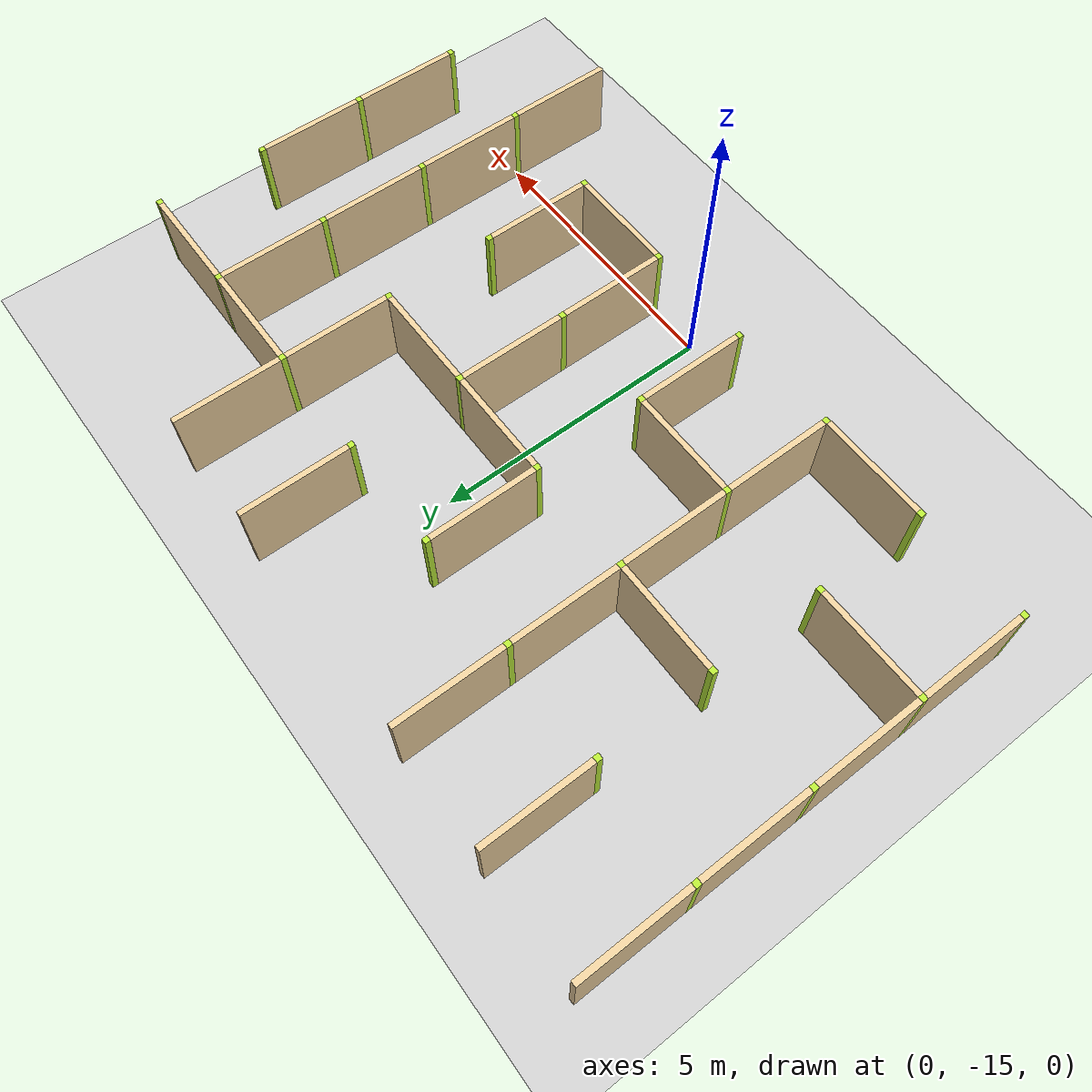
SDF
<sdf version="1.4">
 <world name="maze_world">
  <model name="ground">
   <static>true</static>
   <link name="ground_link">
    <collision name="collision1"><geometry><plane><normal>0 0 1</normal></plane></geometry></collision>
    <visual name="visual1"><geometry><plane><normal>0 0 1</normal><size>100 100</size></plane></geometry></visual>
   </link>
  </model>
  <model name="Untitled">
   <link name="Wall_0_7_v">
    <collision name="Wall_0_Collision">
     <geometry><box><size>1.9 0.1 1.5</size></box></geometry>
     <pose>0 0 0.75 0 -0 0</pose>
    </collision>
    <visual name="Wall_0_Visual">
     <pose>0 0 0.75 0 -0 0</pose>
     <geometry><box><size>1.9 0.1 1.5</size></box></geometry>
     <material>
      <script><uri>file://media/materials/scripts/gazebo.material</uri><name>Gazebo/Grey</name></script>
      <ambient>0.921569 0.807843 0.615686 1</ambient>
     </material>
     <meta><layer>0</layer></meta>
    </visual>
    <pose>-7 -8.0 0 0 -0 1.5708</pose>
    <sensor name="my_contact" type="contact">
     <contact><collision>box_collision</collision><topic>/rover_collision</topic></contact>
    </sensor>
   </link>
   <link name="Wall_1_7_v">
    <collision name="Wall_0_Collision">
     <geometry><box><size>1.9 0.1 1.5</size></box></geometry>
     <pose>0 0 0.75 0 -0 0</pose>
    </collision>
    <visual name="Wall_0_Visual">
     <pose>0 0 0.75 0 -0 0</pose>
     <geometry><box><size>1.9 0.1 1.5</size></box></geometry>
     <material>
      <script><uri>file://media/materials/scripts/gazebo.material</uri><name>Gazebo/Grey</name></script>
      <ambient>0.921569 0.807843 0.615686 1</ambient>
     </material>
     <meta><layer>0</layer></meta>
    </visual>
    <pose>-5 -8.0 0 0 -0 1.5708</pose>
    <sensor name="my_contact" type="contact">
     <contact><collision>box_collision</collision><topic>/rover_collision</topic></contact>
    </sensor>
   </link>
   <link name="Wall_2_7_v">
    <collision name="Wall_0_Collision">
     <geometry><box><size>1.9 0.1 1.5</size></box></geometry>
     <pose>0 0 0.75 0 -0 0</pose>
    </collision>
    <visual name="Wall_0_Visual">
     <pose>0 0 0.75 0 -0 0</pose>
     <geometry><box><size>1.9 0.1 1.5</size></box></geometry>
     <material>
      <script><uri>file://media/materials/scripts/gazebo.material</uri><name>Gazebo/Grey</name></script>
      <ambient>0.921569 0.807843 0.615686 1</ambient>
     </material>
     <meta><layer>0</layer></meta>
    </visual>
    <pose>-3 -8.0 0 0 -0 1.5708</pose>
    <sensor name="my_contact" type="contact">
     <contact><collision>box_collision</collision><topic>/rover_collision</topic></contact>
    </sensor>
   </link>
   <link name="Wall_4_7_v">
    <collision name="Wall_0_Collision">
     <geometry><box><size>1.9 0.1 1.5</size></box></geometry>
     <pose>0 0 0.75 0 -0 0</pose>
    </collision>
    <visual name="Wall_0_Visual">
     <pose>0 0 0.75 0 -0 0</pose>
     <geometry><box><size>1.9 0.1 1.5</size></box></geometry>
     <material>
      <script><uri>file://media/materials/scripts/gazebo.material</uri><name>Gazebo/Grey</name></script>
      <ambient>0.921569 0.807843 0.615686 1</ambient>
     </material>
     <meta><layer>0</layer></meta>
    </visual>
    <pose>1 -8.0 0 0 -0 1.5708</pose>
    <sensor name="my_contact" type="contact">
     <contact><collision>box_collision</collision><topic>/rover_collision</topic></contact>
    </sensor>
   </link>
   <link name="Wall_5_7_v">
    <collision name="Wall_0_Collision">
     <geometry><box><size>1.9 0.1 1.5</size></box></geometry>
     <pose>0 0 0.75 0 -0 0</pose>
    </collision>
    <visual name="Wall_0_Visual">
     <pose>0 0 0.75 0 -0 0</pose>
     <geometry><box><size>1.9 0.1 1.5</size></box></geometry>
     <material>
      <script><uri>file://media/materials/scripts/gazebo.material</uri><name>Gazebo/Grey</name></script>
      <ambient>0.921569 0.807843 0.615686 1</ambient>
     </material>
     <meta><layer>0</layer></meta>
    </visual>
    <pose>3 -8.0 0 0 -0 1.5708</pose>
    <sensor name="my_contact" type="contact">
     <contact><collision>box_collision</collision><topic>/rover_collision</topic></contact>
    </sensor>
   </link>
   <link name="Wall_0_8_v">
    <collision name="Wall_0_Collision">
     <geometry><box><size>1.9 0.1 1.5</size></box></geometry>
     <pose>0 0 0.75 0 -0 0</pose>
    </collision>
    <visual name="Wall_0_Visual">
     <pose>0 0 0.75 0 -0 0</pose>
     <geometry><box><size>1.9 0.1 1.5</size></box></geometry>
     <material>
      <script><uri>file://media/materials/scripts/gazebo.material</uri><name>Gazebo/Grey</name></script>
      <ambient>0.921569 0.807843 0.615686 1</ambient>
     </material>
     <meta><layer>0</layer></meta>
    </visual>
    <pose>-7 -10.0 0 0 -0 1.5708</pose>
    <sensor name="my_contact" type="contact">
     <contact><collision>box_collision</collision><topic>/rover_collision</topic></contact>
    </sensor>
   </link>
   <link name="Joint_-7_-9">
    <collision name="Wall_2_Collision">
     <geometry><box><size>0.1 0.1 1.5</size></box></geometry>
     <pose>0 0 0.75 0 -0 0</pose>
    </collision>
    <visual name="Wall_2_Visual">
     <pose>0 0 0.75 0 -0 0</pose>
     <geometry><box><size>0.1 0.1 1.5</size></box></geometry>
     <material>
      <script><uri>file://media/materials/scripts/gazebo.material</uri><name>Gazebo/Grey</name></script>
      <ambient>0.721569 0.907843 0.215686 1</ambient>
     </material>
     <meta><layer>0</layer></meta>
    </visual>
    <pose>-7 -9 0 0 -0 0</pose>
    <sensor name="my_contact" type="contact">
     <contact><collision>box_collision</collision><topic>/rover_collision</topic></contact>
    </sensor>
   </link>
   <link name="Joint_-5_-9">
    <collision name="Wall_2_Collision">
     <geometry><box><size>0.1 0.1 1.5</size></box></geometry>
     <pose>0 0 0.75 0 -0 0</pose>
    </collision>
    <visual name="Wall_2_Visual">
     <pose>0 0 0.75 0 -0 0</pose>
     <geometry><box><size>0.1 0.1 1.5</size></box></geometry>
     <material>
      <script><uri>file://media/materials/scripts/gazebo.material</uri><name>Gazebo/Grey</name></script>
      <ambient>0.721569 0.907843 0.215686 1</ambient>
     </material>
     <meta><layer>0</layer></meta>
    </visual>
    <pose>-5 -9 0 0 -0 0</pose>
    <sensor name="my_contact" type="contact">
     <contact><collision>box_collision</collision><topic>/rover_collision</topic></contact>
    </sensor>
   </link>
   <link name="Wall_2_8_v">
    <collision name="Wall_0_Collision">
     <geometry><box><size>1.9 0.1 1.5</size></box></geometry>
     <pose>0 0 0.75 0 -0 0</pose>
    </collision>
    <visual name="Wall_0_Visual">
     <pose>0 0 0.75 0 -0 0</pose>
     <geometry><box><size>1.9 0.1 1.5</size></box></geometry>
     <material>
      <script><uri>file://media/materials/scripts/gazebo.material</uri><name>Gazebo/Grey</name></script>
      <ambient>0.921569 0.807843 0.615686 1</ambient>
     </material>
     <meta><layer>0</layer></meta>
    </visual>
    <pose>-3 -10.0 0 0 -0 1.5708</pose>
    <sensor name="my_contact" type="contact">
     <contact><collision>box_collision</collision><topic>/rover_collision</topic></contact>
    </sensor>
   </link>
   <link name="Joint_-3_-9">
    <collision name="Wall_2_Collision">
     <geometry><box><size>0.1 0.1 1.5</size></box></geometry>
     <pose>0 0 0.75 0 -0 0</pose>
    </collision>
    <visual name="Wall_2_Visual">
     <pose>0 0 0.75 0 -0 0</pose>
     <geometry><box><size>0.1 0.1 1.5</size></box></geometry>
     <material>
      <script><uri>file://media/materials/scripts/gazebo.material</uri><name>Gazebo/Grey</name></script>
      <ambient>0.721569 0.907843 0.215686 1</ambient>
     </material>
     <meta><layer>0</layer></meta>
    </visual>
    <pose>-3 -9 0 0 -0 0</pose>
    <sensor name="my_contact" type="contact">
     <contact><collision>box_collision</collision><topic>/rover_collision</topic></contact>
    </sensor>
   </link>
   <link name="Wall_3_8_v">
    <collision name="Wall_0_Collision">
     <geometry><box><size>1.9 0.1 1.5</size></box></geometry>
     <pose>0 0 0.75 0 -0 0</pose>
    </collision>
    <visual name="Wall_0_Visual">
     <pose>0 0 0.75 0 -0 0</pose>
     <geometry><box><size>1.9 0.1 1.5</size></box></geometry>
     <material>
      <script><uri>file://media/materials/scripts/gazebo.material</uri><name>Gazebo/Grey</name></script>
      <ambient>0.921569 0.807843 0.615686 1</ambient>
     </material>
     <meta><layer>0</layer></meta>
    </visual>
    <pose>-1 -10.0 0 0 -0 1.5708</pose>
    <sensor name="my_contact" type="contact">
     <contact><collision>box_collision</collision><topic>/rover_collision</topic></contact>
    </sensor>
   </link>
   <link name="Joint_-1_-9">
    <collision name="Wall_2_Collision">
     <geometry><box><size>0.1 0.1 1.5</size></box></geometry>
     <pose>0 0 0.75 0 -0 0</pose>
    </collision>
    <visual name="Wall_2_Visual">
     <pose>0 0 0.75 0 -0 0</pose>
     <geometry><box><size>0.1 0.1 1.5</size></box></geometry>
     <material>
      <script><uri>file://media/materials/scripts/gazebo.material</uri><name>Gazebo/Grey</name></script>
      <ambient>0.721569 0.907843 0.215686 1</ambient>
     </material>
     <meta><layer>0</layer></meta>
    </visual>
    <pose>-1 -9 0 0 -0 0</pose>
    <sensor name="my_contact" type="contact">
     <contact><collision>box_collision</collision><topic>/rover_collision</topic></contact>
    </sensor>
   </link>
   <link name="Joint_1_-9">
    <collision name="Wall_2_Collision">
     <geometry><box><size>0.1 0.1 1.5</size></box></geometry>
     <pose>0 0 0.75 0 -0 0</pose>
    </collision>
    <visual name="Wall_2_Visual">
     <pose>0 0 0.75 0 -0 0</pose>
     <geometry><box><size>0.1 0.1 1.5</size></box></geometry>
     <material>
      <script><uri>file://media/materials/scripts/gazebo.material</uri><name>Gazebo/Grey</name></script>
      <ambient>0.721569 0.907843 0.215686 1</ambient>
     </material>
     <meta><layer>0</layer></meta>
    </visual>
    <pose>1 -9 0 0 -0 0</pose>
    <sensor name="my_contact" type="contact">
     <contact><collision>box_collision</collision><topic>/rover_collision</topic></contact>
    </sensor>
   </link>
   <link name="Wall_5_8_h">
    <collision name="Wall_0_Collision">
     <geometry><box><size>1.9 0.1 1.5</size></box></geometry>
     <pose>0 0 0.75 0 -0 0</pose>
    </collision>
    <visual name="Wall_0_Visual">
     <pose>0 0 0.75 0 -0 0</pose>
     <geometry><box><size>1.9 0.1 1.5</size></box></geometry>
     <material>
      <script><uri>file://media/materials/scripts/gazebo.material</uri><name>Gazebo/Grey</name></script>
      <ambient>0.921569 0.807843 0.615686 1</ambient>
     </material>
     <meta><layer>0</layer></meta>
    </visual>
    <pose>4.0 -9 0 0 -0 0</pose>
    <sensor name="my_contact" type="contact">
     <contact><collision>box_collision</collision><topic>/rover_collision</topic></contact>
    </sensor>
   </link>
   <link name="Wall_5_8_v">
    <collision name="Wall_0_Collision">
     <geometry><box><size>1.9 0.1 1.5</size></box></geometry>
     <pose>0 0 0.75 0 -0 0</pose>
    </collision>
    <visual name="Wall_0_Visual">
     <pose>0 0 0.75 0 -0 0</pose>
     <geometry><box><size>1.9 0.1 1.5</size></box></geometry>
     <material>
      <script><uri>file://media/materials/scripts/gazebo.material</uri><name>Gazebo/Grey</name></script>
      <ambient>0.921569 0.807843 0.615686 1</ambient>
     </material>
     <meta><layer>0</layer></meta>
    </visual>
    <pose>3 -10.0 0 0 -0 1.5708</pose>
    <sensor name="my_contact" type="contact">
     <contact><collision>box_collision</collision><topic>/rover_collision</topic></contact>
    </sensor>
   </link>
   <link name="Joint_3_-9">
    <collision name="Wall_2_Collision">
     <geometry><box><size>0.1 0.1 1.5</size></box></geometry>
     <pose>0 0 0.75 0 -0 0</pose>
    </collision>
    <visual name="Wall_2_Visual">
     <pose>0 0 0.75 0 -0 0</pose>
     <geometry><box><size>0.1 0.1 1.5</size></box></geometry>
     <material>
      <script><uri>file://media/materials/scripts/gazebo.material</uri><name>Gazebo/Grey</name></script>
      <ambient>0.721569 0.907843 0.215686 1</ambient>
     </material>
     <meta><layer>0</layer></meta>
    </visual>
    <pose>3 -9 0 0 -0 0</pose>
    <sensor name="my_contact" type="contact">
     <contact><collision>box_collision</collision><topic>/rover_collision</topic></contact>
    </sensor>
   </link>
   <link name="Wall_6_8_h">
    <collision name="Wall_0_Collision">
     <geometry><box><size>1.9 0.1 1.5</size></box></geometry>
     <pose>0 0 0.75 0 -0 0</pose>
    </collision>
    <visual name="Wall_0_Visual">
     <pose>0 0 0.75 0 -0 0</pose>
     <geometry><box><size>1.9 0.1 1.5</size></box></geometry>
     <material>
      <script><uri>file://media/materials/scripts/gazebo.material</uri><name>Gazebo/Grey</name></script>
      <ambient>0.921569 0.807843 0.615686 1</ambient>
     </material>
     <meta><layer>0</layer></meta>
    </visual>
    <pose>6.0 -9 0 0 -0 0</pose>
    <sensor name="my_contact" type="contact">
     <contact><collision>box_collision</collision><topic>/rover_collision</topic></contact>
    </sensor>
   </link>
   <link name="Wall_6_8_v">
    <collision name="Wall_0_Collision">
     <geometry><box><size>1.9 0.1 1.5</size></box></geometry>
     <pose>0 0 0.75 0 -0 0</pose>
    </collision>
    <visual name="Wall_0_Visual">
     <pose>0 0 0.75 0 -0 0</pose>
     <geometry><box><size>1.9 0.1 1.5</size></box></geometry>
     <material>
      <script><uri>file://media/materials/scripts/gazebo.material</uri><name>Gazebo/Grey</name></script>
      <ambient>0.921569 0.807843 0.615686 1</ambient>
     </material>
     <meta><layer>0</layer></meta>
    </visual>
    <pose>5 -10.0 0 0 -0 1.5708</pose>
    <sensor name="my_contact" type="contact">
     <contact><collision>box_collision</collision><topic>/rover_collision</topic></contact>
    </sensor>
   </link>
   <link name="Joint_5_-9">
    <collision name="Wall_2_Collision">
     <geometry><box><size>0.1 0.1 1.5</size></box></geometry>
     <pose>0 0 0.75 0 -0 0</pose>
    </collision>
    <visual name="Wall_2_Visual">
     <pose>0 0 0.75 0 -0 0</pose>
     <geometry><box><size>0.1 0.1 1.5</size></box></geometry>
     <material>
      <script><uri>file://media/materials/scripts/gazebo.material</uri><name>Gazebo/Grey</name></script>
      <ambient>0.721569 0.907843 0.215686 1</ambient>
     </material>
     <meta><layer>0</layer></meta>
    </visual>
    <pose>5 -9 0 0 -0 0</pose>
    <sensor name="my_contact" type="contact">
     <contact><collision>box_collision</collision><topic>/rover_collision</topic></contact>
    </sensor>
   </link>
   <link name="Joint_7_-9">
    <collision name="Wall_2_Collision">
     <geometry><box><size>0.1 0.1 1.5</size></box></geometry>
     <pose>0 0 0.75 0 -0 0</pose>
    </collision>
    <visual name="Wall_2_Visual">
     <pose>0 0 0.75 0 -0 0</pose>
     <geometry><box><size>0.1 0.1 1.5</size></box></geometry>
     <material>
      <script><uri>file://media/materials/scripts/gazebo.material</uri><name>Gazebo/Grey</name></script>
      <ambient>0.721569 0.907843 0.215686 1</ambient>
     </material>
     <meta><layer>0</layer></meta>
    </visual>
    <pose>7 -9 0 0 -0 0</pose>
    <sensor name="my_contact" type="contact">
     <contact><collision>box_collision</collision><topic>/rover_collision</topic></contact>
    </sensor>
   </link>
   <link name="Wall_0_9_v">
    <collision name="Wall_0_Collision">
     <geometry><box><size>1.9 0.1 1.5</size></box></geometry>
     <pose>0 0 0.75 0 -0 0</pose>
    </collision>
    <visual name="Wall_0_Visual">
     <pose>0 0 0.75 0 -0 0</pose>
     <geometry><box><size>1.9 0.1 1.5</size></box></geometry>
     <material>
      <script><uri>file://media/materials/scripts/gazebo.material</uri><name>Gazebo/Grey</name></script>
      <ambient>0.921569 0.807843 0.615686 1</ambient>
     </material>
     <meta><layer>0</layer></meta>
    </visual>
    <pose>-7 -12.0 0 0 -0 1.5708</pose>
    <sensor name="my_contact" type="contact">
     <contact><collision>box_collision</collision><topic>/rover_collision</topic></contact>
    </sensor>
   </link>
   <link name="Joint_-7_-11">
    <collision name="Wall_2_Collision">
     <geometry><box><size>0.1 0.1 1.5</size></box></geometry>
     <pose>0 0 0.75 0 -0 0</pose>
    </collision>
    <visual name="Wall_2_Visual">
     <pose>0 0 0.75 0 -0 0</pose>
     <geometry><box><size>0.1 0.1 1.5</size></box></geometry>
     <material>
      <script><uri>file://media/materials/scripts/gazebo.material</uri><name>Gazebo/Grey</name></script>
      <ambient>0.721569 0.907843 0.215686 1</ambient>
     </material>
     <meta><layer>0</layer></meta>
    </visual>
    <pose>-7 -11 0 0 -0 0</pose>
    <sensor name="my_contact" type="contact">
     <contact><collision>box_collision</collision><topic>/rover_collision</topic></contact>
    </sensor>
   </link>
   <link name="Wall_1_9_h">
    <collision name="Wall_0_Collision">
     <geometry><box><size>1.9 0.1 1.5</size></box></geometry>
     <pose>0 0 0.75 0 -0 0</pose>
    </collision>
    <visual name="Wall_0_Visual">
     <pose>0 0 0.75 0 -0 0</pose>
     <geometry><box><size>1.9 0.1 1.5</size></box></geometry>
     <material>
      <script><uri>file://media/materials/scripts/gazebo.material</uri><name>Gazebo/Grey</name></script>
      <ambient>0.921569 0.807843 0.615686 1</ambient>
     </material>
     <meta><layer>0</layer></meta>
    </visual>
    <pose>-4.0 -11 0 0 -0 0</pose>
    <sensor name="my_contact" type="contact">
     <contact><collision>box_collision</collision><topic>/rover_collision</topic></contact>
    </sensor>
   </link>
   <link name="Joint_-5_-11">
    <collision name="Wall_2_Collision">
     <geometry><box><size>0.1 0.1 1.5</size></box></geometry>
     <pose>0 0 0.75 0 -0 0</pose>
    </collision>
    <visual name="Wall_2_Visual">
     <pose>0 0 0.75 0 -0 0</pose>
     <geometry><box><size>0.1 0.1 1.5</size></box></geometry>
     <material>
      <script><uri>file://media/materials/scripts/gazebo.material</uri><name>Gazebo/Grey</name></script>
      <ambient>0.721569 0.907843 0.215686 1</ambient>
     </material>
     <meta><layer>0</layer></meta>
    </visual>
    <pose>-5 -11 0 0 -0 0</pose>
    <sensor name="my_contact" type="contact">
     <contact><collision>box_collision</collision><topic>/rover_collision</topic></contact>
    </sensor>
   </link>
   <link name="Wall_2_9_v">
    <collision name="Wall_0_Collision">
     <geometry><box><size>1.9 0.1 1.5</size></box></geometry>
     <pose>0 0 0.75 0 -0 0</pose>
    </collision>
    <visual name="Wall_0_Visual">
     <pose>0 0 0.75 0 -0 0</pose>
     <geometry><box><size>1.9 0.1 1.5</size></box></geometry>
     <material>
      <script><uri>file://media/materials/scripts/gazebo.material</uri><name>Gazebo/Grey</name></script>
      <ambient>0.921569 0.807843 0.615686 1</ambient>
     </material>
     <meta><layer>0</layer></meta>
    </visual>
    <pose>-3 -12.0 0 0 -0 1.5708</pose>
    <sensor name="my_contact" type="contact">
     <contact><collision>box_collision</collision><topic>/rover_collision</topic></contact>
    </sensor>
   </link>
   <link name="Joint_-3_-11">
    <collision name="Wall_2_Collision">
     <geometry><box><size>0.1 0.1 1.5</size></box></geometry>
     <pose>0 0 0.75 0 -0 0</pose>
    </collision>
    <visual name="Wall_2_Visual">
     <pose>0 0 0.75 0 -0 0</pose>
     <geometry><box><size>0.1 0.1 1.5</size></box></geometry>
     <material>
      <script><uri>file://media/materials/scripts/gazebo.material</uri><name>Gazebo/Grey</name></script>
      <ambient>0.721569 0.907843 0.215686 1</ambient>
     </material>
     <meta><layer>0</layer></meta>
    </visual>
    <pose>-3 -11 0 0 -0 0</pose>
    <sensor name="my_contact" type="contact">
     <contact><collision>box_collision</collision><topic>/rover_collision</topic></contact>
    </sensor>
   </link>
   <link name="Wall_3_9_h">
    <collision name="Wall_0_Collision">
     <geometry><box><size>1.9 0.1 1.5</size></box></geometry>
     <pose>0 0 0.75 0 -0 0</pose>
    </collision>
    <visual name="Wall_0_Visual">
     <pose>0 0 0.75 0 -0 0</pose>
     <geometry><box><size>1.9 0.1 1.5</size></box></geometry>
     <material>
      <script><uri>file://media/materials/scripts/gazebo.material</uri><name>Gazebo/Grey</name></script>
      <ambient>0.921569 0.807843 0.615686 1</ambient>
     </material>
     <meta><layer>0</layer></meta>
    </visual>
    <pose>0.0 -11 0 0 -0 0</pose>
    <sensor name="my_contact" type="contact">
     <contact><collision>box_collision</collision><topic>/rover_collision</topic></contact>
    </sensor>
   </link>
   <link name="Joint_-1_-11">
    <collision name="Wall_2_Collision">
     <geometry><box><size>0.1 0.1 1.5</size></box></geometry>
     <pose>0 0 0.75 0 -0 0</pose>
    </collision>
    <visual name="Wall_2_Visual">
     <pose>0 0 0.75 0 -0 0</pose>
     <geometry><box><size>0.1 0.1 1.5</size></box></geometry>
     <material>
      <script><uri>file://media/materials/scripts/gazebo.material</uri><name>Gazebo/Grey</name></script>
      <ambient>0.721569 0.907843 0.215686 1</ambient>
     </material>
     <meta><layer>0</layer></meta>
    </visual>
    <pose>-1 -11 0 0 -0 0</pose>
    <sensor name="my_contact" type="contact">
     <contact><collision>box_collision</collision><topic>/rover_collision</topic></contact>
    </sensor>
   </link>
   <link name="Wall_4_9_h">
    <collision name="Wall_0_Collision">
     <geometry><box><size>1.9 0.1 1.5</size></box></geometry>
     <pose>0 0 0.75 0 -0 0</pose>
    </collision>
    <visual name="Wall_0_Visual">
     <pose>0 0 0.75 0 -0 0</pose>
     <geometry><box><size>1.9 0.1 1.5</size></box></geometry>
     <material>
      <script><uri>file://media/materials/scripts/gazebo.material</uri><name>Gazebo/Grey</name></script>
      <ambient>0.921569 0.807843 0.615686 1</ambient>
     </material>
     <meta><layer>0</layer></meta>
    </visual>
    <pose>2.0 -11 0 0 -0 0</pose>
    <sensor name="my_contact" type="contact">
     <contact><collision>box_collision</collision><topic>/rover_collision</topic></contact>
    </sensor>
   </link>
   <link name="Wall_4_9_v">
    <collision name="Wall_0_Collision">
     <geometry><box><size>1.9 0.1 1.5</size></box></geometry>
     <pose>0 0 0.75 0 -0 0</pose>
    </collision>
    <visual name="Wall_0_Visual">
     <pose>0 0 0.75 0 -0 0</pose>
     <geometry><box><size>1.9 0.1 1.5</size></box></geometry>
     <material>
      <script><uri>file://media/materials/scripts/gazebo.material</uri><name>Gazebo/Grey</name></script>
      <ambient>0.921569 0.807843 0.615686 1</ambient>
     </material>
     <meta><layer>0</layer></meta>
    </visual>
    <pose>1 -12.0 0 0 -0 1.5708</pose>
    <sensor name="my_contact" type="contact">
     <contact><collision>box_collision</collision><topic>/rover_collision</topic></contact>
    </sensor>
   </link>
   <link name="Joint_1_-11">
    <collision name="Wall_2_Collision">
     <geometry><box><size>0.1 0.1 1.5</size></box></geometry>
     <pose>0 0 0.75 0 -0 0</pose>
    </collision>
    <visual name="Wall_2_Visual">
     <pose>0 0 0.75 0 -0 0</pose>
     <geometry><box><size>0.1 0.1 1.5</size></box></geometry>
     <material>
      <script><uri>file://media/materials/scripts/gazebo.material</uri><name>Gazebo/Grey</name></script>
      <ambient>0.721569 0.907843 0.215686 1</ambient>
     </material>
     <meta><layer>0</layer></meta>
    </visual>
    <pose>1 -11 0 0 -0 0</pose>
    <sensor name="my_contact" type="contact">
     <contact><collision>box_collision</collision><topic>/rover_collision</topic></contact>
    </sensor>
   </link>
   <link name="Joint_3_-11">
    <collision name="Wall_2_Collision">
     <geometry><box><size>0.1 0.1 1.5</size></box></geometry>
     <pose>0 0 0.75 0 -0 0</pose>
    </collision>
    <visual name="Wall_2_Visual">
     <pose>0 0 0.75 0 -0 0</pose>
     <geometry><box><size>0.1 0.1 1.5</size></box></geometry>
     <material>
      <script><uri>file://media/materials/scripts/gazebo.material</uri><name>Gazebo/Grey</name></script>
      <ambient>0.721569 0.907843 0.215686 1</ambient>
     </material>
     <meta><layer>0</layer></meta>
    </visual>
    <pose>3 -11 0 0 -0 0</pose>
    <sensor name="my_contact" type="contact">
     <contact><collision>box_collision</collision><topic>/rover_collision</topic></contact>
    </sensor>
   </link>
   <link name="Wall_6_9_v">
    <collision name="Wall_0_Collision">
     <geometry><box><size>1.9 0.1 1.5</size></box></geometry>
     <pose>0 0 0.75 0 -0 0</pose>
    </collision>
    <visual name="Wall_0_Visual">
     <pose>0 0 0.75 0 -0 0</pose>
     <geometry><box><size>1.9 0.1 1.5</size></box></geometry>
     <material>
      <script><uri>file://media/materials/scripts/gazebo.material</uri><name>Gazebo/Grey</name></script>
      <ambient>0.921569 0.807843 0.615686 1</ambient>
     </material>
     <meta><layer>0</layer></meta>
    </visual>
    <pose>5 -12.0 0 0 -0 1.5708</pose>
    <sensor name="my_contact" type="contact">
     <contact><collision>box_collision</collision><topic>/rover_collision</topic></contact>
    </sensor>
   </link>
   <link name="Joint_5_-11">
    <collision name="Wall_2_Collision">
     <geometry><box><size>0.1 0.1 1.5</size></box></geometry>
     <pose>0 0 0.75 0 -0 0</pose>
    </collision>
    <visual name="Wall_2_Visual">
     <pose>0 0 0.75 0 -0 0</pose>
     <geometry><box><size>0.1 0.1 1.5</size></box></geometry>
     <material>
      <script><uri>file://media/materials/scripts/gazebo.material</uri><name>Gazebo/Grey</name></script>
      <ambient>0.721569 0.907843 0.215686 1</ambient>
     </material>
     <meta><layer>0</layer></meta>
    </visual>
    <pose>5 -11 0 0 -0 0</pose>
    <sensor name="my_contact" type="contact">
     <contact><collision>box_collision</collision><topic>/rover_collision</topic></contact>
    </sensor>
   </link>
   <link name="Wall_7_9_v">
    <collision name="Wall_0_Collision">
     <geometry><box><size>1.9 0.1 1.5</size></box></geometry>
     <pose>0 0 0.75 0 -0 0</pose>
    </collision>
    <visual name="Wall_0_Visual">
     <pose>0 0 0.75 0 -0 0</pose>
     <geometry><box><size>1.9 0.1 1.5</size></box></geometry>
     <material>
      <script><uri>file://media/materials/scripts/gazebo.material</uri><name>Gazebo/Grey</name></script>
      <ambient>0.921569 0.807843 0.615686 1</ambient>
     </material>
     <meta><layer>0</layer></meta>
    </visual>
    <pose>7 -12.0 0 0 -0 1.5708</pose>
    <sensor name="my_contact" type="contact">
     <contact><collision>box_collision</collision><topic>/rover_collision</topic></contact>
    </sensor>
   </link>
   <link name="Joint_7_-11">
    <collision name="Wall_2_Collision">
     <geometry><box><size>0.1 0.1 1.5</size></box></geometry>
     <pose>0 0 0.75 0 -0 0</pose>
    </collision>
    <visual name="Wall_2_Visual">
     <pose>0 0 0.75 0 -0 0</pose>
     <geometry><box><size>0.1 0.1 1.5</size></box></geometry>
     <material>
      <script><uri>file://media/materials/scripts/gazebo.material</uri><name>Gazebo/Grey</name></script>
      <ambient>0.721569 0.907843 0.215686 1</ambient>
     </material>
     <meta><layer>0</layer></meta>
    </visual>
    <pose>7 -11 0 0 -0 0</pose>
    <sensor name="my_contact" type="contact">
     <contact><collision>box_collision</collision><topic>/rover_collision</topic></contact>
    </sensor>
   </link>
   <link name="Wall_0_10_h">
    <collision name="Wall_0_Collision">
     <geometry><box><size>1.9 0.1 1.5</size></box></geometry>
     <pose>0 0 0.75 0 -0 0</pose>
    </collision>
    <visual name="Wall_0_Visual">
     <pose>0 0 0.75 0 -0 0</pose>
     <geometry><box><size>1.9 0.1 1.5</size></box></geometry>
     <material>
      <script><uri>file://media/materials/scripts/gazebo.material</uri><name>Gazebo/Grey</name></script>
      <ambient>0.921569 0.807843 0.615686 1</ambient>
     </material>
     <meta><layer>0</layer></meta>
    </visual>
    <pose>-6.0 -13 0 0 -0 0</pose>
    <sensor name="my_contact" type="contact">
     <contact><collision>box_collision</collision><topic>/rover_collision</topic></contact>
    </sensor>
   </link>
   <link name="Wall_0_10_v">
    <collision name="Wall_0_Collision">
     <geometry><box><size>1.9 0.1 1.5</size></box></geometry>
     <pose>0 0 0.75 0 -0 0</pose>
    </collision>
    <visual name="Wall_0_Visual">
     <pose>0 0 0.75 0 -0 0</pose>
     <geometry><box><size>1.9 0.1 1.5</size></box></geometry>
     <material>
      <script><uri>file://media/materials/scripts/gazebo.material</uri><name>Gazebo/Grey</name></script>
      <ambient>0.921569 0.807843 0.615686 1</ambient>
     </material>
     <meta><layer>0</layer></meta>
    </visual>
    <pose>-7 -14.0 0 0 -0 1.5708</pose>
    <sensor name="my_contact" type="contact">
     <contact><collision>box_collision</collision><topic>/rover_collision</topic></contact>
    </sensor>
   </link>
   <link name="Joint_-7_-13">
    <collision name="Wall_2_Collision">
     <geometry><box><size>0.1 0.1 1.5</size></box></geometry>
     <pose>0 0 0.75 0 -0 0</pose>
    </collision>
    <visual name="Wall_2_Visual">
     <pose>0 0 0.75 0 -0 0</pose>
     <geometry><box><size>0.1 0.1 1.5</size></box></geometry>
     <material>
      <script><uri>file://media/materials/scripts/gazebo.material</uri><name>Gazebo/Grey</name></script>
      <ambient>0.721569 0.907843 0.215686 1</ambient>
     </material>
     <meta><layer>0</layer></meta>
    </visual>
    <pose>-7 -13 0 0 -0 0</pose>
    <sensor name="my_contact" type="contact">
     <contact><collision>box_collision</collision><topic>/rover_collision</topic></contact>
    </sensor>
   </link>
   <link name="Joint_-5_-13">
    <collision name="Wall_2_Collision">
     <geometry><box><size>0.1 0.1 1.5</size></box></geometry>
     <pose>0 0 0.75 0 -0 0</pose>
    </collision>
    <visual name="Wall_2_Visual">
     <pose>0 0 0.75 0 -0 0</pose>
     <geometry><box><size>0.1 0.1 1.5</size></box></geometry>
     <material>
      <script><uri>file://media/materials/scripts/gazebo.material</uri><name>Gazebo/Grey</name></script>
      <ambient>0.721569 0.907843 0.215686 1</ambient>
     </material>
     <meta><layer>0</layer></meta>
    </visual>
    <pose>-5 -13 0 0 -0 0</pose>
    <sensor name="my_contact" type="contact">
     <contact><collision>box_collision</collision><topic>/rover_collision</topic></contact>
    </sensor>
   </link>
   <link name="Wall_2_10_h">
    <collision name="Wall_0_Collision">
     <geometry><box><size>1.9 0.1 1.5</size></box></geometry>
     <pose>0 0 0.75 0 -0 0</pose>
    </collision>
    <visual name="Wall_0_Visual">
     <pose>0 0 0.75 0 -0 0</pose>
     <geometry><box><size>1.9 0.1 1.5</size></box></geometry>
     <material>
      <script><uri>file://media/materials/scripts/gazebo.material</uri><name>Gazebo/Grey</name></script>
      <ambient>0.921569 0.807843 0.615686 1</ambient>
     </material>
     <meta><layer>0</layer></meta>
    </visual>
    <pose>-2.0 -13 0 0 -0 0</pose>
    <sensor name="my_contact" type="contact">
     <contact><collision>box_collision</collision><topic>/rover_collision</topic></contact>
    </sensor>
   </link>
   <link name="Wall_2_10_v">
    <collision name="Wall_0_Collision">
     <geometry><box><size>1.9 0.1 1.5</size></box></geometry>
     <pose>0 0 0.75 0 -0 0</pose>
    </collision>
    <visual name="Wall_0_Visual">
     <pose>0 0 0.75 0 -0 0</pose>
     <geometry><box><size>1.9 0.1 1.5</size></box></geometry>
     <material>
      <script><uri>file://media/materials/scripts/gazebo.material</uri><name>Gazebo/Grey</name></script>
      <ambient>0.921569 0.807843 0.615686 1</ambient>
     </material>
     <meta><layer>0</layer></meta>
    </visual>
    <pose>-3 -14.0 0 0 -0 1.5708</pose>
    <sensor name="my_contact" type="contact">
     <contact><collision>box_collision</collision><topic>/rover_collision</topic></contact>
    </sensor>
   </link>
   <link name="Joint_-3_-13">
    <collision name="Wall_2_Collision">
     <geometry><box><size>0.1 0.1 1.5</size></box></geometry>
     <pose>0 0 0.75 0 -0 0</pose>
    </collision>
    <visual name="Wall_2_Visual">
     <pose>0 0 0.75 0 -0 0</pose>
     <geometry><box><size>0.1 0.1 1.5</size></box></geometry>
     <material>
      <script><uri>file://media/materials/scripts/gazebo.material</uri><name>Gazebo/Grey</name></script>
      <ambient>0.721569 0.907843 0.215686 1</ambient>
     </material>
     <meta><layer>0</layer></meta>
    </visual>
    <pose>-3 -13 0 0 -0 0</pose>
    <sensor name="my_contact" type="contact">
     <contact><collision>box_collision</collision><topic>/rover_collision</topic></contact>
    </sensor>
   </link>
   <link name="Wall_3_10_v">
    <collision name="Wall_0_Collision">
     <geometry><box><size>1.9 0.1 1.5</size></box></geometry>
     <pose>0 0 0.75 0 -0 0</pose>
    </collision>
    <visual name="Wall_0_Visual">
     <pose>0 0 0.75 0 -0 0</pose>
     <geometry><box><size>1.9 0.1 1.5</size></box></geometry>
     <material>
      <script><uri>file://media/materials/scripts/gazebo.material</uri><name>Gazebo/Grey</name></script>
      <ambient>0.921569 0.807843 0.615686 1</ambient>
     </material>
     <meta><layer>0</layer></meta>
    </visual>
    <pose>-1 -14.0 0 0 -0 1.5708</pose>
    <sensor name="my_contact" type="contact">
     <contact><collision>box_collision</collision><topic>/rover_collision</topic></contact>
    </sensor>
   </link>
   <link name="Joint_-1_-13">
    <collision name="Wall_2_Collision">
     <geometry><box><size>0.1 0.1 1.5</size></box></geometry>
     <pose>0 0 0.75 0 -0 0</pose>
    </collision>
    <visual name="Wall_2_Visual">
     <pose>0 0 0.75 0 -0 0</pose>
     <geometry><box><size>0.1 0.1 1.5</size></box></geometry>
     <material>
      <script><uri>file://media/materials/scripts/gazebo.material</uri><name>Gazebo/Grey</name></script>
      <ambient>0.721569 0.907843 0.215686 1</ambient>
     </material>
     <meta><layer>0</layer></meta>
    </visual>
    <pose>-1 -13 0 0 -0 0</pose>
    <sensor name="my_contact" type="contact">
     <contact><collision>box_collision</collision><topic>/rover_collision</topic></contact>
    </sensor>
   </link>
   <link name="Wall_4_10_v">
    <collision name="Wall_0_Collision">
     <geometry><box><size>1.9 0.1 1.5</size></box></geometry>
     <pose>0 0 0.75 0 -0 0</pose>
    </collision>
    <visual name="Wall_0_Visual">
     <pose>0 0 0.75 0 -0 0</pose>
     <geometry><box><size>1.9 0.1 1.5</size></box></geometry>
     <material>
      <script><uri>file://media/materials/scripts/gazebo.material</uri><name>Gazebo/Grey</name></script>
      <ambient>0.921569 0.807843 0.615686 1</ambient>
     </material>
     <meta><layer>0</layer></meta>
    </visual>
    <pose>1 -14.0 0 0 -0 1.5708</pose>
    <sensor name="my_contact" type="contact">
     <contact><collision>box_collision</collision><topic>/rover_collision</topic></contact>
    </sensor>
   </link>
   <link name="Joint_1_-13">
    <collision name="Wall_2_Collision">
     <geometry><box><size>0.1 0.1 1.5</size></box></geometry>
     <pose>0 0 0.75 0 -0 0</pose>
    </collision>
    <visual name="Wall_2_Visual">
     <pose>0 0 0.75 0 -0 0</pose>
     <geometry><box><size>0.1 0.1 1.5</size></box></geometry>
     <material>
      <script><uri>file://media/materials/scripts/gazebo.material</uri><name>Gazebo/Grey</name></script>
      <ambient>0.721569 0.907843 0.215686 1</ambient>
     </material>
     <meta><layer>0</layer></meta>
    </visual>
    <pose>1 -13 0 0 -0 0</pose>
    <sensor name="my_contact" type="contact">
     <contact><collision>box_collision</collision><topic>/rover_collision</topic></contact>
    </sensor>
   </link>
   <link name="Wall_5_10_v">
    <collision name="Wall_0_Collision">
     <geometry><box><size>1.9 0.1 1.5</size></box></geometry>
     <pose>0 0 0.75 0 -0 0</pose>
    </collision>
    <visual name="Wall_0_Visual">
     <pose>0 0 0.75 0 -0 0</pose>
     <geometry><box><size>1.9 0.1 1.5</size></box></geometry>
     <material>
      <script><uri>file://media/materials/scripts/gazebo.material</uri><name>Gazebo/Grey</name></script>
      <ambient>0.921569 0.807843 0.615686 1</ambient>
     </material>
     <meta><layer>0</layer></meta>
    </visual>
    <pose>3 -14.0 0 0 -0 1.5708</pose>
    <sensor name="my_contact" type="contact">
     <contact><collision>box_collision</collision><topic>/rover_collision</topic></contact>
    </sensor>
   </link>
   <link name="Joint_3_-13">
    <collision name="Wall_2_Collision">
     <geometry><box><size>0.1 0.1 1.5</size></box></geometry>
     <pose>0 0 0.75 0 -0 0</pose>
    </collision>
    <visual name="Wall_2_Visual">
     <pose>0 0 0.75 0 -0 0</pose>
     <geometry><box><size>0.1 0.1 1.5</size></box></geometry>
     <material>
      <script><uri>file://media/materials/scripts/gazebo.material</uri><name>Gazebo/Grey</name></script>
      <ambient>0.721569 0.907843 0.215686 1</ambient>
     </material>
     <meta><layer>0</layer></meta>
    </visual>
    <pose>3 -13 0 0 -0 0</pose>
    <sensor name="my_contact" type="contact">
     <contact><collision>box_collision</collision><topic>/rover_collision</topic></contact>
    </sensor>
   </link>
   <link name="Wall_6_10_v">
    <collision name="Wall_0_Collision">
     <geometry><box><size>1.9 0.1 1.5</size></box></geometry>
     <pose>0 0 0.75 0 -0 0</pose>
    </collision>
    <visual name="Wall_0_Visual">
     <pose>0 0 0.75 0 -0 0</pose>
     <geometry><box><size>1.9 0.1 1.5</size></box></geometry>
     <material>
      <script><uri>file://media/materials/scripts/gazebo.material</uri><name>Gazebo/Grey</name></script>
      <ambient>0.921569 0.807843 0.615686 1</ambient>
     </material>
     <meta><layer>0</layer></meta>
    </visual>
    <pose>5 -14.0 0 0 -0 1.5708</pose>
    <sensor name="my_contact" type="contact">
     <contact><collision>box_collision</collision><topic>/rover_collision</topic></contact>
    </sensor>
   </link>
   <link name="Joint_5_-13">
    <collision name="Wall_2_Collision">
     <geometry><box><size>0.1 0.1 1.5</size></box></geometry>
     <pose>0 0 0.75 0 -0 0</pose>
    </collision>
    <visual name="Wall_2_Visual">
     <pose>0 0 0.75 0 -0 0</pose>
     <geometry><box><size>0.1 0.1 1.5</size></box></geometry>
     <material>
      <script><uri>file://media/materials/scripts/gazebo.material</uri><name>Gazebo/Grey</name></script>
      <ambient>0.721569 0.907843 0.215686 1</ambient>
     </material>
     <meta><layer>0</layer></meta>
    </visual>
    <pose>5 -13 0 0 -0 0</pose>
    <sensor name="my_contact" type="contact">
     <contact><collision>box_collision</collision><topic>/rover_collision</topic></contact>
    </sensor>
   </link>
   <link name="Wall_7_10_v">
    <collision name="Wall_0_Collision">
     <geometry><box><size>1.9 0.1 1.5</size></box></geometry>
     <pose>0 0 0.75 0 -0 0</pose>
    </collision>
    <visual name="Wall_0_Visual">
     <pose>0 0 0.75 0 -0 0</pose>
     <geometry><box><size>1.9 0.1 1.5</size></box></geometry>
     <material>
      <script><uri>file://media/materials/scripts/gazebo.material</uri><name>Gazebo/Grey</name></script>
      <ambient>0.921569 0.807843 0.615686 1</ambient>
     </material>
     <meta><layer>0</layer></meta>
    </visual>
    <pose>7 -14.0 0 0 -0 1.5708</pose>
    <sensor name="my_contact" type="contact">
     <contact><collision>box_collision</collision><topic>/rover_collision</topic></contact>
    </sensor>
   </link>
   <link name="Joint_7_-13">
    <collision name="Wall_2_Collision">
     <geometry><box><size>0.1 0.1 1.5</size></box></geometry>
     <pose>0 0 0.75 0 -0 0</pose>
    </collision>
    <visual name="Wall_2_Visual">
     <pose>0 0 0.75 0 -0 0</pose>
     <geometry><box><size>0.1 0.1 1.5</size></box></geometry>
     <material>
      <script><uri>file://media/materials/scripts/gazebo.material</uri><name>Gazebo/Grey</name></script>
      <ambient>0.721569 0.907843 0.215686 1</ambient>
     </material>
     <meta><layer>0</layer></meta>
    </visual>
    <pose>7 -13 0 0 -0 0</pose>
    <sensor name="my_contact" type="contact">
     <contact><collision>box_collision</collision><topic>/rover_collision</topic></contact>
    </sensor>
   </link>
   <link name="Joint_-7_-15">
    <collision name="Wall_2_Collision">
     <geometry><box><size>0.1 0.1 1.5</size></box></geometry>
     <pose>0 0 0.75 0 -0 0</pose>
    </collision>
    <visual name="Wall_2_Visual">
     <pose>0 0 0.75 0 -0 0</pose>
     <geometry><box><size>0.1 0.1 1.5</size></box></geometry>
     <material>
      <script><uri>file://media/materials/scripts/gazebo.material</uri><name>Gazebo/Grey</name></script>
      <ambient>0.721569 0.907843 0.215686 1</ambient>
     </material>
     <meta><layer>0</layer></meta>
    </visual>
    <pose>-7 -15 0 0 -0 0</pose>
    <sensor name="my_contact" type="contact">
     <contact><collision>box_collision</collision><topic>/rover_collision</topic></contact>
    </sensor>
   </link>
   <link name="Wall_1_11_h">
    <collision name="Wall_0_Collision">
     <geometry><box><size>1.9 0.1 1.5</size></box></geometry>
     <pose>0 0 0.75 0 -0 0</pose>
    </collision>
    <visual name="Wall_0_Visual">
     <pose>0 0 0.75 0 -0 0</pose>
     <geometry><box><size>1.9 0.1 1.5</size></box></geometry>
     <material>
      <script><uri>file://media/materials/scripts/gazebo.material</uri><name>Gazebo/Grey</name></script>
      <ambient>0.921569 0.807843 0.615686 1</ambient>
     </material>
     <meta><layer>0</layer></meta>
    </visual>
    <pose>-4.0 -15 0 0 -0 0</pose>
    <sensor name="my_contact" type="contact">
     <contact><collision>box_collision</collision><topic>/rover_collision</topic></contact>
    </sensor>
   </link>
   <link name="Joint_-5_-15">
    <collision name="Wall_2_Collision">
     <geometry><box><size>0.1 0.1 1.5</size></box></geometry>
     <pose>0 0 0.75 0 -0 0</pose>
    </collision>
    <visual name="Wall_2_Visual">
     <pose>0 0 0.75 0 -0 0</pose>
     <geometry><box><size>0.1 0.1 1.5</size></box></geometry>
     <material>
      <script><uri>file://media/materials/scripts/gazebo.material</uri><name>Gazebo/Grey</name></script>
      <ambient>0.721569 0.907843 0.215686 1</ambient>
     </material>
     <meta><layer>0</layer></meta>
    </visual>
    <pose>-5 -15 0 0 -0 0</pose>
    <sensor name="my_contact" type="contact">
     <contact><collision>box_collision</collision><topic>/rover_collision</topic></contact>
    </sensor>
   </link>
   <link name="Joint_-3_-15">
    <collision name="Wall_2_Collision">
     <geometry><box><size>0.1 0.1 1.5</size></box></geometry>
     <pose>0 0 0.75 0 -0 0</pose>
    </collision>
    <visual name="Wall_2_Visual">
     <pose>0 0 0.75 0 -0 0</pose>
     <geometry><box><size>0.1 0.1 1.5</size></box></geometry>
     <material>
      <script><uri>file://media/materials/scripts/gazebo.material</uri><name>Gazebo/Grey</name></script>
      <ambient>0.721569 0.907843 0.215686 1</ambient>
     </material>
     <meta><layer>0</layer></meta>
    </visual>
    <pose>-3 -15 0 0 -0 0</pose>
    <sensor name="my_contact" type="contact">
     <contact><collision>box_collision</collision><topic>/rover_collision</topic></contact>
    </sensor>
   </link>
   <link name="Joint_-1_-15">
    <collision name="Wall_2_Collision">
     <geometry><box><size>0.1 0.1 1.5</size></box></geometry>
     <pose>0 0 0.75 0 -0 0</pose>
    </collision>
    <visual name="Wall_2_Visual">
     <pose>0 0 0.75 0 -0 0</pose>
     <geometry><box><size>0.1 0.1 1.5</size></box></geometry>
     <material>
      <script><uri>file://media/materials/scripts/gazebo.material</uri><name>Gazebo/Grey</name></script>
      <ambient>0.721569 0.907843 0.215686 1</ambient>
     </material>
     <meta><layer>0</layer></meta>
    </visual>
    <pose>-1 -15 0 0 -0 0</pose>
    <sensor name="my_contact" type="contact">
     <contact><collision>box_collision</collision><topic>/rover_collision</topic></contact>
    </sensor>
   </link>
   <link name="Wall_4_11_h">
    <collision name="Wall_0_Collision">
     <geometry><box><size>1.9 0.1 1.5</size></box></geometry>
     <pose>0 0 0.75 0 -0 0</pose>
    </collision>
    <visual name="Wall_0_Visual">
     <pose>0 0 0.75 0 -0 0</pose>
     <geometry><box><size>1.9 0.1 1.5</size></box></geometry>
     <material>
      <script><uri>file://media/materials/scripts/gazebo.material</uri><name>Gazebo/Grey</name></script>
      <ambient>0.921569 0.807843 0.615686 1</ambient>
     </material>
     <meta><layer>0</layer></meta>
    </visual>
    <pose>2.0 -15 0 0 -0 0</pose>
    <sensor name="my_contact" type="contact">
     <contact><collision>box_collision</collision><topic>/rover_collision</topic></contact>
    </sensor>
   </link>
   <link name="Joint_1_-15">
    <collision name="Wall_2_Collision">
     <geometry><box><size>0.1 0.1 1.5</size></box></geometry>
     <pose>0 0 0.75 0 -0 0</pose>
    </collision>
    <visual name="Wall_2_Visual">
     <pose>0 0 0.75 0 -0 0</pose>
     <geometry><box><size>0.1 0.1 1.5</size></box></geometry>
     <material>
      <script><uri>file://media/materials/scripts/gazebo.material</uri><name>Gazebo/Grey</name></script>
      <ambient>0.721569 0.907843 0.215686 1</ambient>
     </material>
     <meta><layer>0</layer></meta>
    </visual>
    <pose>1 -15 0 0 -0 0</pose>
    <sensor name="my_contact" type="contact">
     <contact><collision>box_collision</collision><topic>/rover_collision</topic></contact>
    </sensor>
   </link>
   <link name="Joint_3_-15">
    <collision name="Wall_2_Collision">
     <geometry><box><size>0.1 0.1 1.5</size></box></geometry>
     <pose>0 0 0.75 0 -0 0</pose>
    </collision>
    <visual name="Wall_2_Visual">
     <pose>0 0 0.75 0 -0 0</pose>
     <geometry><box><size>0.1 0.1 1.5</size></box></geometry>
     <material>
      <script><uri>file://media/materials/scripts/gazebo.material</uri><name>Gazebo/Grey</name></script>
      <ambient>0.721569 0.907843 0.215686 1</ambient>
     </material>
     <meta><layer>0</layer></meta>
    </visual>
    <pose>3 -15 0 0 -0 0</pose>
    <sensor name="my_contact" type="contact">
     <contact><collision>box_collision</collision><topic>/rover_collision</topic></contact>
    </sensor>
   </link>
   <link name="Wall_6_11_v">
    <collision name="Wall_0_Collision">
     <geometry><box><size>1.9 0.1 1.5</size></box></geometry>
     <pose>0 0 0.75 0 -0 0</pose>
    </collision>
    <visual name="Wall_0_Visual">
     <pose>0 0 0.75 0 -0 0</pose>
     <geometry><box><size>1.9 0.1 1.5</size></box></geometry>
     <material>
      <script><uri>file://media/materials/scripts/gazebo.material</uri><name>Gazebo/Grey</name></script>
      <ambient>0.921569 0.807843 0.615686 1</ambient>
     </material>
     <meta><layer>0</layer></meta>
    </visual>
    <pose>5 -16.0 0 0 -0 1.5708</pose>
    <sensor name="my_contact" type="contact">
     <contact><collision>box_collision</collision><topic>/rover_collision</topic></contact>
    </sensor>
   </link>
   <link name="Joint_5_-15">
    <collision name="Wall_2_Collision">
     <geometry><box><size>0.1 0.1 1.5</size></box></geometry>
     <pose>0 0 0.75 0 -0 0</pose>
    </collision>
    <visual name="Wall_2_Visual">
     <pose>0 0 0.75 0 -0 0</pose>
     <geometry><box><size>0.1 0.1 1.5</size></box></geometry>
     <material>
      <script><uri>file://media/materials/scripts/gazebo.material</uri><name>Gazebo/Grey</name></script>
      <ambient>0.721569 0.907843 0.215686 1</ambient>
     </material>
     <meta><layer>0</layer></meta>
    </visual>
    <pose>5 -15 0 0 -0 0</pose>
    <sensor name="my_contact" type="contact">
     <contact><collision>box_collision</collision><topic>/rover_collision</topic></contact>
    </sensor>
   </link>
   <link name="Joint_7_-15">
    <collision name="Wall_2_Collision">
     <geometry><box><size>0.1 0.1 1.5</size></box></geometry>
     <pose>0 0 0.75 0 -0 0</pose>
    </collision>
    <visual name="Wall_2_Visual">
     <pose>0 0 0.75 0 -0 0</pose>
     <geometry><box><size>0.1 0.1 1.5</size></box></geometry>
     <material>
      <script><uri>file://media/materials/scripts/gazebo.material</uri><name>Gazebo/Grey</name></script>
      <ambient>0.721569 0.907843 0.215686 1</ambient>
     </material>
     <meta><layer>0</layer></meta>
    </visual>
    <pose>7 -15 0 0 -0 0</pose>
    <sensor name="my_contact" type="contact">
     <contact><collision>box_collision</collision><topic>/rover_collision</topic></contact>
    </sensor>
   </link>
   <static>1</static>
  </model>
 </world>
</sdf>
